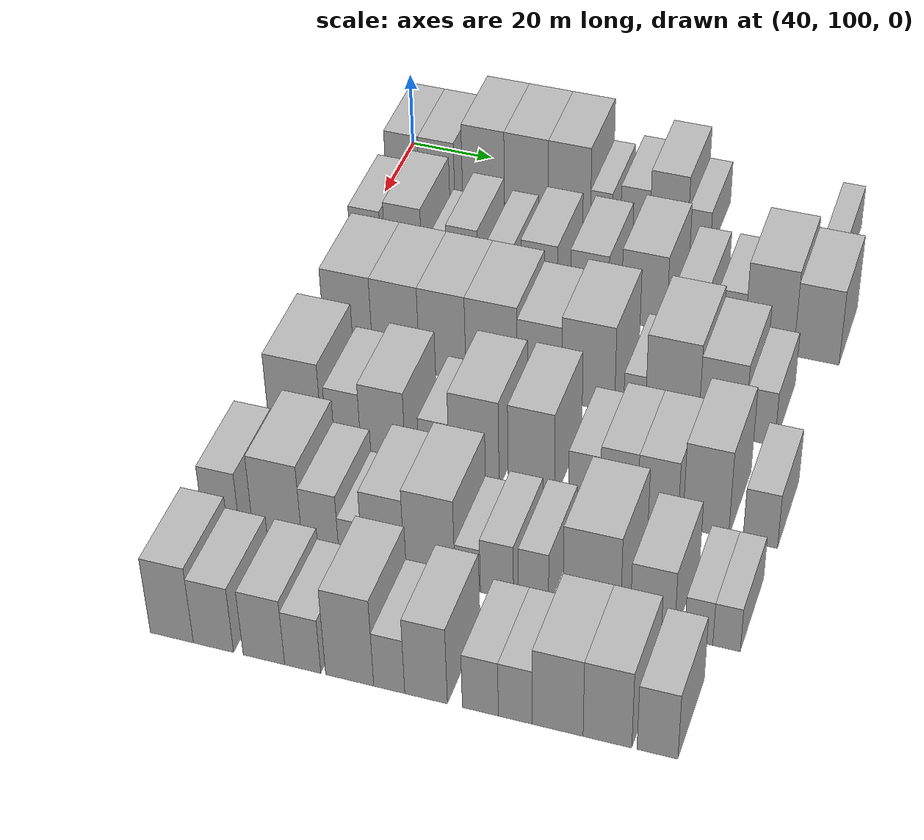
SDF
<sdf version="1.6">
 <world name="default">
  <model name="building_68">
   <static>1</static>
   <pose>50.0000 104.3968 0 0.000000 0.000000 0.000000</pose>
   <link name="link">
    <pose>0 0 9.00 0 0 0</pose>
    <collision name="collision"><geometry><box><size>20.0000 8.3330 18.0000</size></box></geometry></collision>
    <visual name="visual">
     <cast_shadows>0</cast_shadows>
     <geometry><box><size>20.0000 8.3330 18.0000</size></box></geometry>
     <material>
      <script>
       <uri>model://HANNAS_wall/materials/scripts</uri>
       <uri>model://HANNAS_wall/materials/textures</uri>
       <name>vrc/HANNAS_wall</name>
      </script>
     </material>
    </visual>
   </link>
  </model>
  <model name="building_69">
   <static>1</static>
   <pose>50.0000 112.9626 0 0.000000 0.000000 0.000000</pose>
   <link name="link">
    <pose>0 0 9.00 0 0 0</pose>
    <collision name="collision"><geometry><box><size>20.0000 8.7986 18.0000</size></box></geometry></collision>
    <visual name="visual">
     <cast_shadows>0</cast_shadows>
     <geometry><box><size>20.0000 8.7986 18.0000</size></box></geometry>
     <material>
      <script>
       <uri>model://HANNAS_wall/materials/scripts</uri>
       <uri>model://HANNAS_wall/materials/textures</uri>
       <name>vrc/HANNAS_wall</name>
      </script>
     </material>
    </visual>
   </link>
  </model>
  <model name="building_70">
   <static>1</static>
   <pose>50.0000 124.5488 0 0.000000 0.000000 0.000000</pose>
   <link name="link">
    <pose>0 0 12.00 0 0 0</pose>
    <collision name="collision"><geometry><box><size>20.0000 10.3739 24.0000</size></box></geometry></collision>
    <visual name="visual">
     <cast_shadows>0</cast_shadows>
     <geometry><box><size>20.0000 10.3739 24.0000</size></box></geometry>
     <material>
      <script>
       <uri>model://HANNAS_wall/materials/scripts</uri>
       <uri>model://HANNAS_wall/materials/textures</uri>
       <name>vrc/HANNAS_wall</name>
      </script>
     </material>
    </visual>
   </link>
  </model>
  <model name="building_71">
   <static>1</static>
   <pose>50.0000 135.1065 0 0.000000 0.000000 0.000000</pose>
   <link name="link">
    <pose>0 0 12.00 0 0 0</pose>
    <collision name="collision"><geometry><box><size>20.0000 10.7414 24.0000</size></box></geometry></collision>
    <visual name="visual">
     <cast_shadows>0</cast_shadows>
     <geometry><box><size>20.0000 10.7414 24.0000</size></box></geometry>
     <material>
      <script>
       <uri>model://HANNAS_wall/materials/scripts</uri>
       <uri>model://HANNAS_wall/materials/textures</uri>
       <name>vrc/HANNAS_wall</name>
      </script>
     </material>
    </visual>
   </link>
  </model>
  <model name="building_72">
   <static>1</static>
   <pose>50.0000 145.6075 0 0.000000 0.000000 0.000000</pose>
   <link name="link">
    <pose>0 0 12.00 0 0 0</pose>
    <collision name="collision"><geometry><box><size>20.0000 10.2606 24.0000</size></box></geometry></collision>
    <visual name="visual">
     <cast_shadows>0</cast_shadows>
     <geometry><box><size>20.0000 10.2606 24.0000</size></box></geometry>
     <material>
      <script>
       <uri>model://HANNAS_wall/materials/scripts</uri>
       <uri>model://HANNAS_wall/materials/textures</uri>
       <name>vrc/HANNAS_wall</name>
      </script>
     </material>
    </visual>
   </link>
  </model>
  <model name="building_73">
   <static>1</static>
   <pose>50.0000 153.3737 0 0.000000 0.000000 0.000000</pose>
   <link name="link">
    <pose>0 0 6.00 0 0 0</pose>
    <collision name="collision"><geometry><box><size>20.0000 5.2719 12.0000</size></box></geometry></collision>
    <visual name="visual">
     <cast_shadows>0</cast_shadows>
     <geometry><box><size>20.0000 5.2719 12.0000</size></box></geometry>
     <material>
      <script>
       <uri>model://HANNAS_wall/materials/scripts</uri>
       <uri>model://HANNAS_wall/materials/textures</uri>
       <name>vrc/HANNAS_wall</name>
      </script>
     </material>
    </visual>
   </link>
  </model>
  <model name="building_74">
   <static>1</static>
   <pose>50.0000 161.5263 0 0.000000 0.000000 0.000000</pose>
   <link name="link">
    <pose>0 0 7.50 0 0 0</pose>
    <collision name="collision"><geometry><box><size>20.0000 7.0333 15.0000</size></box></geometry></collision>
    <visual name="visual">
     <cast_shadows>0</cast_shadows>
     <geometry><box><size>20.0000 7.0333 15.0000</size></box></geometry>
     <material>
      <script>
       <uri>model://HANNAS_wall/materials/scripts</uri>
       <uri>model://HANNAS_wall/materials/textures</uri>
       <name>vrc/HANNAS_wall</name>
      </script>
     </material>
    </visual>
   </link>
  </model>
  <model name="building_75">
   <static>1</static>
   <pose>50.0000 169.5614 0 0.000000 0.000000 0.000000</pose>
   <link name="link">
    <pose>0 0 10.50 0 0 0</pose>
    <collision name="collision"><geometry><box><size>20.0000 9.0369 21.0000</size></box></geometry></collision>
    <visual name="visual">
     <cast_shadows>0</cast_shadows>
     <geometry><box><size>20.0000 9.0369 21.0000</size></box></geometry>
     <material>
      <script>
       <uri>model://HANNAS_wall/materials/scripts</uri>
       <uri>model://HANNAS_wall/materials/textures</uri>
       <name>vrc/HANNAS_wall</name>
      </script>
     </material>
    </visual>
   </link>
  </model>
  <model name="building_76">
   <static>1</static>
   <pose>50.0000 176.8203 0 0.000000 0.000000 0.000000</pose>
   <link name="link">
    <pose>0 0 6.00 0 0 0</pose>
    <collision name="collision"><geometry><box><size>20.0000 5.4810 12.0000</size></box></geometry></collision>
    <visual name="visual">
     <cast_shadows>0</cast_shadows>
     <geometry><box><size>20.0000 5.4810 12.0000</size></box></geometry>
     <material>
      <script>
       <uri>model://HANNAS_wall/materials/scripts</uri>
       <uri>model://HANNAS_wall/materials/textures</uri>
       <name>vrc/HANNAS_wall</name>
      </script>
     </material>
    </visual>
   </link>
  </model>
  <model name="building_77">
   <static>1</static>
   <pose>50.0000 208.4367 0 0.000000 0.000000 0.000000</pose>
   <link name="link">
    <pose>0 0 6.00 0 0 0</pose>
    <collision name="collision"><geometry><box><size>20.0000 5.2506 12.0000</size></box></geometry></collision>
    <visual name="visual">
     <cast_shadows>0</cast_shadows>
     <geometry><box><size>20.0000 5.2506 12.0000</size></box></geometry>
     <material>
      <script>
       <uri>model://HANNAS_wall/materials/scripts</uri>
       <uri>model://HANNAS_wall/materials/textures</uri>
       <name>vrc/HANNAS_wall</name>
      </script>
     </material>
    </visual>
   </link>
  </model>
  <model name="building_180">
   <static>1</static>
   <pose>79.0000 105.8262 0 0.000000 0.000000 0.000000</pose>
   <link name="link">
    <pose>0 0 9.00 0 0 0</pose>
    <collision name="collision"><geometry><box><size>20.0000 7.3974 18.0000</size></box></geometry></collision>
    <visual name="visual">
     <cast_shadows>0</cast_shadows>
     <geometry><box><size>20.0000 7.3974 18.0000</size></box></geometry>
     <material>
      <script>
       <uri>model://HANNAS_wall/materials/scripts</uri>
       <uri>model://HANNAS_wall/materials/textures</uri>
       <name>vrc/HANNAS_wall</name>
      </script>
     </material>
    </visual>
   </link>
  </model>
  <model name="building_181">
   <static>1</static>
   <pose>79.0000 114.9320 0 0.000000 0.000000 0.000000</pose>
   <link name="link">
    <pose>0 0 10.50 0 0 0</pose>
    <collision name="collision"><geometry><box><size>20.0000 8.8144 21.0000</size></box></geometry></collision>
    <visual name="visual">
     <cast_shadows>0</cast_shadows>
     <geometry><box><size>20.0000 8.8144 21.0000</size></box></geometry>
     <material>
      <script>
       <uri>model://HANNAS_wall/materials/scripts</uri>
       <uri>model://HANNAS_wall/materials/textures</uri>
       <name>vrc/HANNAS_wall</name>
      </script>
     </material>
    </visual>
   </link>
  </model>
  <model name="building_182">
   <static>1</static>
   <pose>79.0000 122.7946 0 0.000000 0.000000 0.000000</pose>
   <link name="link">
    <pose>0 0 6.00 0 0 0</pose>
    <collision name="collision"><geometry><box><size>20.0000 4.9108 12.0000</size></box></geometry></collision>
    <visual name="visual">
     <cast_shadows>0</cast_shadows>
     <geometry><box><size>20.0000 4.9108 12.0000</size></box></geometry>
     <material>
      <script>
       <uri>model://HANNAS_wall/materials/scripts</uri>
       <uri>model://HANNAS_wall/materials/textures</uri>
       <name>vrc/HANNAS_wall</name>
      </script>
     </material>
    </visual>
   </link>
  </model>
  <model name="building_183">
   <static>1</static>
   <pose>79.0000 128.9486 0 0.000000 0.000000 0.000000</pose>
   <link name="link">
    <pose>0 0 9.00 0 0 0</pose>
    <collision name="collision"><geometry><box><size>20.0000 7.3972 18.0000</size></box></geometry></collision>
    <visual name="visual">
     <cast_shadows>0</cast_shadows>
     <geometry><box><size>20.0000 7.3972 18.0000</size></box></geometry>
     <material>
      <script>
       <uri>model://HANNAS_wall/materials/scripts</uri>
       <uri>model://HANNAS_wall/materials/textures</uri>
       <name>vrc/HANNAS_wall</name>
      </script>
     </material>
    </visual>
   </link>
  </model>
  <model name="building_184">
   <static>1</static>
   <pose>79.0000 137.7627 0 0.000000 0.000000 0.000000</pose>
   <link name="link">
    <pose>0 0 7.50 0 0 0</pose>
    <collision name="collision"><geometry><box><size>20.0000 6.2309 15.0000</size></box></geometry></collision>
    <visual name="visual">
     <cast_shadows>0</cast_shadows>
     <geometry><box><size>20.0000 6.2309 15.0000</size></box></geometry>
     <material>
      <script>
       <uri>model://HANNAS_wall/materials/scripts</uri>
       <uri>model://HANNAS_wall/materials/textures</uri>
       <name>vrc/HANNAS_wall</name>
      </script>
     </material>
    </visual>
   </link>
  </model>
  <model name="building_185">
   <static>1</static>
   <pose>79.0000 147.1471 0 0.000000 0.000000 0.000000</pose>
   <link name="link">
    <pose>0 0 9.00 0 0 0</pose>
    <collision name="collision"><geometry><box><size>20.0000 8.5379 18.0000</size></box></geometry></collision>
    <visual name="visual">
     <cast_shadows>0</cast_shadows>
     <geometry><box><size>20.0000 8.5379 18.0000</size></box></geometry>
     <material>
      <script>
       <uri>model://HANNAS_wall/materials/scripts</uri>
       <uri>model://HANNAS_wall/materials/textures</uri>
       <name>vrc/HANNAS_wall</name>
      </script>
     </material>
    </visual>
   </link>
  </model>
  <model name="building_186">
   <static>1</static>
   <pose>79.0000 158.8501 0 0.000000 0.000000 0.000000</pose>
   <link name="link">
    <pose>0 0 9.00 0 0 0</pose>
    <collision name="collision"><geometry><box><size>20.0000 8.8682 18.0000</size></box></geometry></collision>
    <visual name="visual">
     <cast_shadows>0</cast_shadows>
     <geometry><box><size>20.0000 8.8682 18.0000</size></box></geometry>
     <material>
      <script>
       <uri>model://HANNAS_wall/materials/scripts</uri>
       <uri>model://HANNAS_wall/materials/textures</uri>
       <name>vrc/HANNAS_wall</name>
      </script>
     </material>
    </visual>
   </link>
  </model>
  <model name="building_187">
   <static>1</static>
   <pose>79.0000 171.5211 0 0.000000 0.000000 0.000000</pose>
   <link name="link">
    <pose>0 0 10.50 0 0 0</pose>
    <collision name="collision"><geometry><box><size>20.0000 10.4739 21.0000</size></box></geometry></collision>
    <visual name="visual">
     <cast_shadows>0</cast_shadows>
     <geometry><box><size>20.0000 10.4739 21.0000</size></box></geometry>
     <material>
      <script>
       <uri>model://HANNAS_wall/materials/scripts</uri>
       <uri>model://HANNAS_wall/materials/textures</uri>
       <name>vrc/HANNAS_wall</name>
      </script>
     </material>
    </visual>
   </link>
  </model>
  <model name="building_188">
   <static>1</static>
   <pose>79.0000 182.4467 0 0.000000 0.000000 0.000000</pose>
   <link name="link">
    <pose>0 0 7.50 0 0 0</pose>
    <collision name="collision"><geometry><box><size>20.0000 7.3772 15.0000</size></box></geometry></collision>
    <visual name="visual">
     <cast_shadows>0</cast_shadows>
     <geometry><box><size>20.0000 7.3772 15.0000</size></box></geometry>
     <material>
      <script>
       <uri>model://HANNAS_wall/materials/scripts</uri>
       <uri>model://HANNAS_wall/materials/textures</uri>
       <name>vrc/HANNAS_wall</name>
      </script>
     </material>
    </visual>
   </link>
  </model>
  <model name="building_189">
   <static>1</static>
   <pose>79.0000 191.3537 0 0.000000 0.000000 0.000000</pose>
   <link name="link">
    <pose>0 0 7.50 0 0 0</pose>
    <collision name="collision"><geometry><box><size>20.0000 6.4369 15.0000</size></box></geometry></collision>
    <visual name="visual">
     <cast_shadows>0</cast_shadows>
     <geometry><box><size>20.0000 6.4369 15.0000</size></box></geometry>
     <material>
      <script>
       <uri>model://HANNAS_wall/materials/scripts</uri>
       <uri>model://HANNAS_wall/materials/textures</uri>
       <name>vrc/HANNAS_wall</name>
      </script>
     </material>
    </visual>
   </link>
  </model>
  <model name="building_190">
   <static>1</static>
   <pose>79.0000 200.1548 0 0.000000 0.000000 0.000000</pose>
   <link name="link">
    <pose>0 0 12.00 0 0 0</pose>
    <collision name="collision"><geometry><box><size>20.0000 11.1652 24.0000</size></box></geometry></collision>
    <visual name="visual">
     <cast_shadows>0</cast_shadows>
     <geometry><box><size>20.0000 11.1652 24.0000</size></box></geometry>
     <material>
      <script>
       <uri>model://HANNAS_wall/materials/scripts</uri>
       <uri>model://HANNAS_wall/materials/textures</uri>
       <name>vrc/HANNAS_wall</name>
      </script>
     </material>
    </visual>
   </link>
  </model>
  <model name="building_191">
   <static>1</static>
   <pose>79.0000 210.8353 0 0.000000 0.000000 0.000000</pose>
   <link name="link">
    <pose>0 0 10.50 0 0 0</pose>
    <collision name="collision"><geometry><box><size>20.0000 10.1958 21.0000</size></box></geometry></collision>
    <visual name="visual">
     <cast_shadows>0</cast_shadows>
     <geometry><box><size>20.0000 10.1958 21.0000</size></box></geometry>
     <material>
      <script>
       <uri>model://HANNAS_wall/materials/scripts</uri>
       <uri>model://HANNAS_wall/materials/textures</uri>
       <name>vrc/HANNAS_wall</name>
      </script>
     </material>
    </visual>
   </link>
  </model>
  <model name="building_293">
   <static>1</static>
   <pose>108.0000 112.2654 0 0.000000 0.000000 0.000000</pose>
   <link name="link">
    <pose>0 0 12.00 0 0 0</pose>
    <collision name="collision"><geometry><box><size>20.0000 11.2115 24.0000</size></box></geometry></collision>
    <visual name="visual">
     <cast_shadows>0</cast_shadows>
     <geometry><box><size>20.0000 11.2115 24.0000</size></box></geometry>
     <material>
      <script>
       <uri>model://HANNAS_wall/materials/scripts</uri>
       <uri>model://HANNAS_wall/materials/textures</uri>
       <name>vrc/HANNAS_wall</name>
      </script>
     </material>
    </visual>
   </link>
  </model>
  <model name="building_294">
   <static>1</static>
   <pose>108.0000 123.2812 0 0.000000 0.000000 0.000000</pose>
   <link name="link">
    <pose>0 0 12.00 0 0 0</pose>
    <collision name="collision"><geometry><box><size>20.0000 10.8199 24.0000</size></box></geometry></collision>
    <visual name="visual">
     <cast_shadows>0</cast_shadows>
     <geometry><box><size>20.0000 10.8199 24.0000</size></box></geometry>
     <material>
      <script>
       <uri>model://HANNAS_wall/materials/scripts</uri>
       <uri>model://HANNAS_wall/materials/textures</uri>
       <name>vrc/HANNAS_wall</name>
      </script>
     </material>
    </visual>
   </link>
  </model>
  <model name="building_295">
   <static>1</static>
   <pose>108.0000 134.0326 0 0.000000 0.000000 0.000000</pose>
   <link name="link">
    <pose>0 0 12.00 0 0 0</pose>
    <collision name="collision"><geometry><box><size>20.0000 10.6829 24.0000</size></box></geometry></collision>
    <visual name="visual">
     <cast_shadows>0</cast_shadows>
     <geometry><box><size>20.0000 10.6829 24.0000</size></box></geometry>
     <material>
      <script>
       <uri>model://HANNAS_wall/materials/scripts</uri>
       <uri>model://HANNAS_wall/materials/textures</uri>
       <name>vrc/HANNAS_wall</name>
      </script>
     </material>
    </visual>
   </link>
  </model>
  <model name="building_296">
   <static>1</static>
   <pose>108.0000 145.2301 0 0.000000 0.000000 0.000000</pose>
   <link name="link">
    <pose>0 0 12.00 0 0 0</pose>
    <collision name="collision"><geometry><box><size>20.0000 11.7120 24.0000</size></box></geometry></collision>
    <visual name="visual">
     <cast_shadows>0</cast_shadows>
     <geometry><box><size>20.0000 11.7120 24.0000</size></box></geometry>
     <material>
      <script>
       <uri>model://HANNAS_wall/materials/scripts</uri>
       <uri>model://HANNAS_wall/materials/textures</uri>
       <name>vrc/HANNAS_wall</name>
      </script>
     </material>
    </visual>
   </link>
  </model>
  <model name="building_297">
   <static>1</static>
   <pose>108.0000 156.0618 0 0.000000 0.000000 0.000000</pose>
   <link name="link">
    <pose>0 0 10.50 0 0 0</pose>
    <collision name="collision"><geometry><box><size>20.0000 9.9513 21.0000</size></box></geometry></collision>
    <visual name="visual">
     <cast_shadows>0</cast_shadows>
     <geometry><box><size>20.0000 9.9513 21.0000</size></box></geometry>
     <material>
      <script>
       <uri>model://HANNAS_wall/materials/scripts</uri>
       <uri>model://HANNAS_wall/materials/textures</uri>
       <name>vrc/HANNAS_wall</name>
      </script>
     </material>
    </visual>
   </link>
  </model>
  <model name="building_298">
   <static>1</static>
   <pose>108.0000 166.9744 0 0.000000 0.000000 0.000000</pose>
   <link name="link">
    <pose>0 0 12.00 0 0 0</pose>
    <collision name="collision"><geometry><box><size>20.0000 11.8740 24.0000</size></box></geometry></collision>
    <visual name="visual">
     <cast_shadows>0</cast_shadows>
     <geometry><box><size>20.0000 11.8740 24.0000</size></box></geometry>
     <material>
      <script>
       <uri>model://HANNAS_wall/materials/scripts</uri>
       <uri>model://HANNAS_wall/materials/textures</uri>
       <name>vrc/HANNAS_wall</name>
      </script>
     </material>
    </visual>
   </link>
  </model>
  <model name="building_299">
   <static>1</static>
   <pose>108.0000 177.3193 0 0.000000 0.000000 0.000000</pose>
   <link name="link">
    <pose>0 0 6.00 0 0 0</pose>
    <collision name="collision"><geometry><box><size>20.0000 4.8158 12.0000</size></box></geometry></collision>
    <visual name="visual">
     <cast_shadows>0</cast_shadows>
     <geometry><box><size>20.0000 4.8158 12.0000</size></box></geometry>
     <material>
      <script>
       <uri>model://HANNAS_wall/materials/scripts</uri>
       <uri>model://HANNAS_wall/materials/textures</uri>
       <name>vrc/HANNAS_wall</name>
      </script>
     </material>
    </visual>
   </link>
  </model>
  <model name="building_300">
   <static>1</static>
   <pose>108.0000 185.6047 0 0.000000 0.000000 0.000000</pose>
   <link name="link">
    <pose>0 0 12.00 0 0 0</pose>
    <collision name="collision"><geometry><box><size>20.0000 11.7549 24.0000</size></box></geometry></collision>
    <visual name="visual">
     <cast_shadows>0</cast_shadows>
     <geometry><box><size>20.0000 11.7549 24.0000</size></box></geometry>
     <material>
      <script>
       <uri>model://HANNAS_wall/materials/scripts</uri>
       <uri>model://HANNAS_wall/materials/textures</uri>
       <name>vrc/HANNAS_wall</name>
      </script>
     </material>
    </visual>
   </link>
  </model>
  <model name="building_301">
   <static>1</static>
   <pose>108.0000 196.5326 0 0.000000 0.000000 0.000000</pose>
   <link name="link">
    <pose>0 0 10.50 0 0 0</pose>
    <collision name="collision"><geometry><box><size>20.0000 10.1008 21.0000</size></box></geometry></collision>
    <visual name="visual">
     <cast_shadows>0</cast_shadows>
     <geometry><box><size>20.0000 10.1008 21.0000</size></box></geometry>
     <material>
      <script>
       <uri>model://HANNAS_wall/materials/scripts</uri>
       <uri>model://HANNAS_wall/materials/textures</uri>
       <name>vrc/HANNAS_wall</name>
      </script>
     </material>
    </visual>
   </link>
  </model>
  <model name="building_302">
   <static>1</static>
   <pose>108.0000 204.8444 0 0.000000 0.000000 0.000000</pose>
   <link name="link">
    <pose>0 0 7.50 0 0 0</pose>
    <collision name="collision"><geometry><box><size>20.0000 6.5229 15.0000</size></box></geometry></collision>
    <visual name="visual">
     <cast_shadows>0</cast_shadows>
     <geometry><box><size>20.0000 6.5229 15.0000</size></box></geometry>
     <material>
      <script>
       <uri>model://HANNAS_wall/materials/scripts</uri>
       <uri>model://HANNAS_wall/materials/textures</uri>
       <name>vrc/HANNAS_wall</name>
      </script>
     </material>
    </visual>
   </link>
  </model>
  <model name="building_397">
   <static>1</static>
   <pose>137.0000 111.1829 0 0.000000 0.000000 0.000000</pose>
   <link name="link">
    <pose>0 0 12.00 0 0 0</pose>
    <collision name="collision"><geometry><box><size>20.0000 11.9411 24.0000</size></box></geometry></collision>
    <visual name="visual">
     <cast_shadows>0</cast_shadows>
     <geometry><box><size>20.0000 11.9411 24.0000</size></box></geometry>
     <material>
      <script>
       <uri>model://HANNAS_wall/materials/scripts</uri>
       <uri>model://HANNAS_wall/materials/textures</uri>
       <name>vrc/HANNAS_wall</name>
      </script>
     </material>
    </visual>
   </link>
  </model>
  <model name="building_398">
   <static>1</static>
   <pose>137.0000 121.9728 0 0.000000 0.000000 0.000000</pose>
   <link name="link">
    <pose>0 0 9.00 0 0 0</pose>
    <collision name="collision"><geometry><box><size>20.0000 7.6387 18.0000</size></box></geometry></collision>
    <visual name="visual">
     <cast_shadows>0</cast_shadows>
     <geometry><box><size>20.0000 7.6387 18.0000</size></box></geometry>
     <material>
      <script>
       <uri>model://HANNAS_wall/materials/scripts</uri>
       <uri>model://HANNAS_wall/materials/textures</uri>
       <name>vrc/HANNAS_wall</name>
      </script>
     </material>
    </visual>
   </link>
  </model>
  <model name="building_399">
   <static>1</static>
   <pose>137.0000 130.7459 0 0.000000 0.000000 0.000000</pose>
   <link name="link">
    <pose>0 0 10.50 0 0 0</pose>
    <collision name="collision"><geometry><box><size>20.0000 9.9074 21.0000</size></box></geometry></collision>
    <visual name="visual">
     <cast_shadows>0</cast_shadows>
     <geometry><box><size>20.0000 9.9074 21.0000</size></box></geometry>
     <material>
      <script>
       <uri>model://HANNAS_wall/materials/scripts</uri>
       <uri>model://HANNAS_wall/materials/textures</uri>
       <name>vrc/HANNAS_wall</name>
      </script>
     </material>
    </visual>
   </link>
  </model>
  <model name="building_400">
   <static>1</static>
   <pose>137.0000 142.0355 0 0.000000 0.000000 0.000000</pose>
   <link name="link">
    <pose>0 0 7.50 0 0 0</pose>
    <collision name="collision"><geometry><box><size>20.0000 6.6718 15.0000</size></box></geometry></collision>
    <visual name="visual">
     <cast_shadows>0</cast_shadows>
     <geometry><box><size>20.0000 6.6718 15.0000</size></box></geometry>
     <material>
      <script>
       <uri>model://HANNAS_wall/materials/scripts</uri>
       <uri>model://HANNAS_wall/materials/textures</uri>
       <name>vrc/HANNAS_wall</name>
      </script>
     </material>
    </visual>
   </link>
  </model>
  <model name="building_401">
   <static>1</static>
   <pose>137.0000 150.7926 0 0.000000 0.000000 0.000000</pose>
   <link name="link">
    <pose>0 0 12.00 0 0 0</pose>
    <collision name="collision"><geometry><box><size>20.0000 10.8425 24.0000</size></box></geometry></collision>
    <visual name="visual">
     <cast_shadows>0</cast_shadows>
     <geometry><box><size>20.0000 10.8425 24.0000</size></box></geometry>
     <material>
      <script>
       <uri>model://HANNAS_wall/materials/scripts</uri>
       <uri>model://HANNAS_wall/materials/textures</uri>
       <name>vrc/HANNAS_wall</name>
      </script>
     </material>
    </visual>
   </link>
  </model>
  <model name="building_402">
   <static>1</static>
   <pose>137.0000 163.2193 0 0.000000 0.000000 0.000000</pose>
   <link name="link">
    <pose>0 0 12.00 0 0 0</pose>
    <collision name="collision"><geometry><box><size>20.0000 10.0109 24.0000</size></box></geometry></collision>
    <visual name="visual">
     <cast_shadows>0</cast_shadows>
     <geometry><box><size>20.0000 10.0109 24.0000</size></box></geometry>
     <material>
      <script>
       <uri>model://HANNAS_wall/materials/scripts</uri>
       <uri>model://HANNAS_wall/materials/textures</uri>
       <name>vrc/HANNAS_wall</name>
      </script>
     </material>
    </visual>
   </link>
  </model>
  <model name="building_403">
   <static>1</static>
   <pose>137.0000 174.6057 0 0.000000 0.000000 0.000000</pose>
   <link name="link">
    <pose>0 0 7.50 0 0 0</pose>
    <collision name="collision"><geometry><box><size>20.0000 6.7619 15.0000</size></box></geometry></collision>
    <visual name="visual">
     <cast_shadows>0</cast_shadows>
     <geometry><box><size>20.0000 6.7619 15.0000</size></box></geometry>
     <material>
      <script>
       <uri>model://HANNAS_wall/materials/scripts</uri>
       <uri>model://HANNAS_wall/materials/textures</uri>
       <name>vrc/HANNAS_wall</name>
      </script>
     </material>
    </visual>
   </link>
  </model>
  <model name="building_404">
   <static>1</static>
   <pose>137.0000 181.9669 0 0.000000 0.000000 0.000000</pose>
   <link name="link">
    <pose>0 0 9.00 0 0 0</pose>
    <collision name="collision"><geometry><box><size>20.0000 7.9606 18.0000</size></box></geometry></collision>
    <visual name="visual">
     <cast_shadows>0</cast_shadows>
     <geometry><box><size>20.0000 7.9606 18.0000</size></box></geometry>
     <material>
      <script>
       <uri>model://HANNAS_wall/materials/scripts</uri>
       <uri>model://HANNAS_wall/materials/textures</uri>
       <name>vrc/HANNAS_wall</name>
      </script>
     </material>
    </visual>
   </link>
  </model>
  <model name="building_405">
   <static>1</static>
   <pose>137.0000 190.2217 0 0.000000 0.000000 0.000000</pose>
   <link name="link">
    <pose>0 0 9.00 0 0 0</pose>
    <collision name="collision"><geometry><box><size>20.0000 8.5491 18.0000</size></box></geometry></collision>
    <visual name="visual">
     <cast_shadows>0</cast_shadows>
     <geometry><box><size>20.0000 8.5491 18.0000</size></box></geometry>
     <material>
      <script>
       <uri>model://HANNAS_wall/materials/scripts</uri>
       <uri>model://HANNAS_wall/materials/textures</uri>
       <name>vrc/HANNAS_wall</name>
      </script>
     </material>
    </visual>
   </link>
  </model>
  <model name="building_406">
   <static>1</static>
   <pose>137.0000 200.3164 0 0.000000 0.000000 0.000000</pose>
   <link name="link">
    <pose>0 0 12.00 0 0 0</pose>
    <collision name="collision"><geometry><box><size>20.0000 9.6403 24.0000</size></box></geometry></collision>
    <visual name="visual">
     <cast_shadows>0</cast_shadows>
     <geometry><box><size>20.0000 9.6403 24.0000</size></box></geometry>
     <material>
      <script>
       <uri>model://HANNAS_wall/materials/scripts</uri>
       <uri>model://HANNAS_wall/materials/textures</uri>
       <name>vrc/HANNAS_wall</name>
      </script>
     </material>
    </visual>
   </link>
  </model>
  <model name="building_407">
   <static>1</static>
   <pose>137.0000 211.7316 0 0.000000 0.000000 0.000000</pose>
   <link name="link">
    <pose>0 0 7.50 0 0 0</pose>
    <collision name="collision"><geometry><box><size>20.0000 7.1901 15.0000</size></box></geometry></collision>
    <visual name="visual">
     <cast_shadows>0</cast_shadows>
     <geometry><box><size>20.0000 7.1901 15.0000</size></box></geometry>
     <material>
      <script>
       <uri>model://HANNAS_wall/materials/scripts</uri>
       <uri>model://HANNAS_wall/materials/textures</uri>
       <name>vrc/HANNAS_wall</name>
      </script>
     </material>
    </visual>
   </link>
  </model>
  <model name="building_512">
   <static>1</static>
   <pose>166.0000 106.2360 0 0.000000 0.000000 0.000000</pose>
   <link name="link">
    <pose>0 0 9.00 0 0 0</pose>
    <collision name="collision"><geometry><box><size>20.0000 8.0060 18.0000</size></box></geometry></collision>
    <visual name="visual">
     <cast_shadows>0</cast_shadows>
     <geometry><box><size>20.0000 8.0060 18.0000</size></box></geometry>
     <material>
      <script>
       <uri>model://HANNAS_wall/materials/scripts</uri>
       <uri>model://HANNAS_wall/materials/textures</uri>
       <name>vrc/HANNAS_wall</name>
      </script>
     </material>
    </visual>
   </link>
  </model>
  <model name="building_513">
   <static>1</static>
   <pose>166.0000 118.5376 0 0.000000 0.000000 0.000000</pose>
   <link name="link">
    <pose>0 0 12.00 0 0 0</pose>
    <collision name="collision"><geometry><box><size>20.0000 10.5971 24.0000</size></box></geometry></collision>
    <visual name="visual">
     <cast_shadows>0</cast_shadows>
     <geometry><box><size>20.0000 10.5971 24.0000</size></box></geometry>
     <material>
      <script>
       <uri>model://HANNAS_wall/materials/scripts</uri>
       <uri>model://HANNAS_wall/materials/textures</uri>
       <name>vrc/HANNAS_wall</name>
      </script>
     </material>
    </visual>
   </link>
  </model>
  <model name="building_514">
   <static>1</static>
   <pose>166.0000 127.7714 0 0.000000 0.000000 0.000000</pose>
   <link name="link">
    <pose>0 0 9.00 0 0 0</pose>
    <collision name="collision"><geometry><box><size>20.0000 7.8706 18.0000</size></box></geometry></collision>
    <visual name="visual">
     <cast_shadows>0</cast_shadows>
     <geometry><box><size>20.0000 7.8706 18.0000</size></box></geometry>
     <material>
      <script>
       <uri>model://HANNAS_wall/materials/scripts</uri>
       <uri>model://HANNAS_wall/materials/textures</uri>
       <name>vrc/HANNAS_wall</name>
      </script>
     </material>
    </visual>
   </link>
  </model>
  <model name="building_515">
   <static>1</static>
   <pose>166.0000 134.2098 0 0.000000 0.000000 0.000000</pose>
   <link name="link">
    <pose>0 0 6.00 0 0 0</pose>
    <collision name="collision"><geometry><box><size>20.0000 5.0063 12.0000</size></box></geometry></collision>
    <visual name="visual">
     <cast_shadows>0</cast_shadows>
     <geometry><box><size>20.0000 5.0063 12.0000</size></box></geometry>
     <material>
      <script>
       <uri>model://HANNAS_wall/materials/scripts</uri>
       <uri>model://HANNAS_wall/materials/textures</uri>
       <name>vrc/HANNAS_wall</name>
      </script>
     </material>
    </visual>
   </link>
  </model>
  <model name="building_516">
   <static>1</static>
   <pose>166.0000 141.1816 0 0.000000 0.000000 0.000000</pose>
   <link name="link">
    <pose>0 0 10.50 0 0 0</pose>
    <collision name="collision"><geometry><box><size>20.0000 8.9372 21.0000</size></box></geometry></collision>
    <visual name="visual">
     <cast_shadows>0</cast_shadows>
     <geometry><box><size>20.0000 8.9372 21.0000</size></box></geometry>
     <material>
      <script>
       <uri>model://HANNAS_wall/materials/scripts</uri>
       <uri>model://HANNAS_wall/materials/textures</uri>
       <name>vrc/HANNAS_wall</name>
      </script>
     </material>
    </visual>
   </link>
  </model>
  <model name="building_517">
   <static>1</static>
   <pose>166.0000 150.9798 0 0.000000 0.000000 0.000000</pose>
   <link name="link">
    <pose>0 0 12.00 0 0 0</pose>
    <collision name="collision"><geometry><box><size>20.0000 10.6593 24.0000</size></box></geometry></collision>
    <visual name="visual">
     <cast_shadows>0</cast_shadows>
     <geometry><box><size>20.0000 10.6593 24.0000</size></box></geometry>
     <material>
      <script>
       <uri>model://HANNAS_wall/materials/scripts</uri>
       <uri>model://HANNAS_wall/materials/textures</uri>
       <name>vrc/HANNAS_wall</name>
      </script>
     </material>
    </visual>
   </link>
  </model>
  <model name="building_518">
   <static>1</static>
   <pose>166.0000 158.9435 0 0.000000 0.000000 0.000000</pose>
   <link name="link">
    <pose>0 0 6.00 0 0 0</pose>
    <collision name="collision"><geometry><box><size>20.0000 5.2681 12.0000</size></box></geometry></collision>
    <visual name="visual">
     <cast_shadows>0</cast_shadows>
     <geometry><box><size>20.0000 5.2681 12.0000</size></box></geometry>
     <material>
      <script>
       <uri>model://HANNAS_wall/materials/scripts</uri>
       <uri>model://HANNAS_wall/materials/textures</uri>
       <name>vrc/HANNAS_wall</name>
      </script>
     </material>
    </visual>
   </link>
  </model>
  <model name="building_519">
   <static>1</static>
   <pose>166.0000 165.0257 0 0.000000 0.000000 0.000000</pose>
   <link name="link">
    <pose>0 0 7.50 0 0 0</pose>
    <collision name="collision"><geometry><box><size>20.0000 6.8962 15.0000</size></box></geometry></collision>
    <visual name="visual">
     <cast_shadows>0</cast_shadows>
     <geometry><box><size>20.0000 6.8962 15.0000</size></box></geometry>
     <material>
      <script>
       <uri>model://HANNAS_wall/materials/scripts</uri>
       <uri>model://HANNAS_wall/materials/textures</uri>
       <name>vrc/HANNAS_wall</name>
      </script>
     </material>
    </visual>
   </link>
  </model>
  <model name="building_520">
   <static>1</static>
   <pose>166.0000 172.5883 0 0.000000 0.000000 0.000000</pose>
   <link name="link">
    <pose>0 0 7.50 0 0 0</pose>
    <collision name="collision"><geometry><box><size>20.0000 6.2289 15.0000</size></box></geometry></collision>
    <visual name="visual">
     <cast_shadows>0</cast_shadows>
     <geometry><box><size>20.0000 6.2289 15.0000</size></box></geometry>
     <material>
      <script>
       <uri>model://HANNAS_wall/materials/scripts</uri>
       <uri>model://HANNAS_wall/materials/textures</uri>
       <name>vrc/HANNAS_wall</name>
      </script>
     </material>
    </visual>
   </link>
  </model>
  <model name="building_521">
   <static>1</static>
   <pose>166.0000 184.5467 0 0.000000 0.000000 0.000000</pose>
   <link name="link">
    <pose>0 0 12.00 0 0 0</pose>
    <collision name="collision"><geometry><box><size>20.0000 11.6881 24.0000</size></box></geometry></collision>
    <visual name="visual">
     <cast_shadows>0</cast_shadows>
     <geometry><box><size>20.0000 11.6881 24.0000</size></box></geometry>
     <material>
      <script>
       <uri>model://HANNAS_wall/materials/scripts</uri>
       <uri>model://HANNAS_wall/materials/textures</uri>
       <name>vrc/HANNAS_wall</name>
      </script>
     </material>
    </visual>
   </link>
  </model>
  <model name="building_522">
   <static>1</static>
   <pose>166.0000 196.8771 0 0.000000 0.000000 0.000000</pose>
   <link name="link">
    <pose>0 0 9.00 0 0 0</pose>
    <collision name="collision"><geometry><box><size>20.0000 8.9727 18.0000</size></box></geometry></collision>
    <visual name="visual">
     <cast_shadows>0</cast_shadows>
     <geometry><box><size>20.0000 8.9727 18.0000</size></box></geometry>
     <material>
      <script>
       <uri>model://HANNAS_wall/materials/scripts</uri>
       <uri>model://HANNAS_wall/materials/textures</uri>
       <name>vrc/HANNAS_wall</name>
      </script>
     </material>
    </visual>
   </link>
  </model>
  <model name="building_523">
   <static>1</static>
   <pose>166.0000 206.2152 0 0.000000 0.000000 0.000000</pose>
   <link name="link">
    <pose>0 0 6.00 0 0 0</pose>
    <collision name="collision"><geometry><box><size>20.0000 5.7034 12.0000</size></box></geometry></collision>
    <visual name="visual">
     <cast_shadows>0</cast_shadows>
     <geometry><box><size>20.0000 5.7034 12.0000</size></box></geometry>
     <material>
      <script>
       <uri>model://HANNAS_wall/materials/scripts</uri>
       <uri>model://HANNAS_wall/materials/textures</uri>
       <name>vrc/HANNAS_wall</name>
      </script>
     </material>
    </visual>
   </link>
  </model>
  <model name="building_524">
   <static>1</static>
   <pose>166.0000 211.8118 0 0.000000 0.000000 0.000000</pose>
   <link name="link">
    <pose>0 0 6.00 0 0 0</pose>
    <collision name="collision"><geometry><box><size>20.0000 5.4900 12.0000</size></box></geometry></collision>
    <visual name="visual">
     <cast_shadows>0</cast_shadows>
     <geometry><box><size>20.0000 5.4900 12.0000</size></box></geometry>
     <material>
      <script>
       <uri>model://HANNAS_wall/materials/scripts</uri>
       <uri>model://HANNAS_wall/materials/textures</uri>
       <name>vrc/HANNAS_wall</name>
      </script>
     </material>
    </visual>
   </link>
  </model>
  <model name="building_634">
   <static>1</static>
   <pose>195.0000 107.7500 0 0.000000 0.000000 0.000000</pose>
   <link name="link">
    <pose>0 0 10.50 0 0 0</pose>
    <collision name="collision"><geometry><box><size>20.0000 9.0793 21.0000</size></box></geometry></collision>
    <visual name="visual">
     <cast_shadows>0</cast_shadows>
     <geometry><box><size>20.0000 9.0793 21.0000</size></box></geometry>
     <material>
      <script>
       <uri>model://HANNAS_wall/materials/scripts</uri>
       <uri>model://HANNAS_wall/materials/textures</uri>
       <name>vrc/HANNAS_wall</name>
      </script>
     </material>
    </visual>
   </link>
  </model>
  <model name="building_635">
   <static>1</static>
   <pose>195.0000 116.4989 0 0.000000 0.000000 0.000000</pose>
   <link name="link">
    <pose>0 0 9.00 0 0 0</pose>
    <collision name="collision"><geometry><box><size>20.0000 8.4183 18.0000</size></box></geometry></collision>
    <visual name="visual">
     <cast_shadows>0</cast_shadows>
     <geometry><box><size>20.0000 8.4183 18.0000</size></box></geometry>
     <material>
      <script>
       <uri>model://HANNAS_wall/materials/scripts</uri>
       <uri>model://HANNAS_wall/materials/textures</uri>
       <name>vrc/HANNAS_wall</name>
      </script>
     </material>
    </visual>
   </link>
  </model>
  <model name="building_636">
   <static>1</static>
   <pose>195.0000 127.0114 0 0.000000 0.000000 0.000000</pose>
   <link name="link">
    <pose>0 0 9.00 0 0 0</pose>
    <collision name="collision"><geometry><box><size>20.0000 8.6067 18.0000</size></box></geometry></collision>
    <visual name="visual">
     <cast_shadows>0</cast_shadows>
     <geometry><box><size>20.0000 8.6067 18.0000</size></box></geometry>
     <material>
      <script>
       <uri>model://HANNAS_wall/materials/scripts</uri>
       <uri>model://HANNAS_wall/materials/textures</uri>
       <name>vrc/HANNAS_wall</name>
      </script>
     </material>
    </visual>
   </link>
  </model>
  <model name="building_637">
   <static>1</static>
   <pose>195.0000 135.0380 0 0.000000 0.000000 0.000000</pose>
   <link name="link">
    <pose>0 0 7.50 0 0 0</pose>
    <collision name="collision"><geometry><box><size>20.0000 7.4465 15.0000</size></box></geometry></collision>
    <visual name="visual">
     <cast_shadows>0</cast_shadows>
     <geometry><box><size>20.0000 7.4465 15.0000</size></box></geometry>
     <material>
      <script>
       <uri>model://HANNAS_wall/materials/scripts</uri>
       <uri>model://HANNAS_wall/materials/textures</uri>
       <name>vrc/HANNAS_wall</name>
      </script>
     </material>
    </visual>
   </link>
  </model>
  <model name="building_638">
   <static>1</static>
   <pose>195.0000 144.6724 0 0.000000 0.000000 0.000000</pose>
   <link name="link">
    <pose>0 0 12.00 0 0 0</pose>
    <collision name="collision"><geometry><box><size>20.0000 9.8224 24.0000</size></box></geometry></collision>
    <visual name="visual">
     <cast_shadows>0</cast_shadows>
     <geometry><box><size>20.0000 9.8224 24.0000</size></box></geometry>
     <material>
      <script>
       <uri>model://HANNAS_wall/materials/scripts</uri>
       <uri>model://HANNAS_wall/materials/textures</uri>
       <name>vrc/HANNAS_wall</name>
      </script>
     </material>
    </visual>
   </link>
  </model>
  <model name="building_639">
   <static>1</static>
   <pose>195.0000 152.7251 0 0.000000 0.000000 0.000000</pose>
   <link name="link">
    <pose>0 0 7.50 0 0 0</pose>
    <collision name="collision"><geometry><box><size>20.0000 6.2831 15.0000</size></box></geometry></collision>
    <visual name="visual">
     <cast_shadows>0</cast_shadows>
     <geometry><box><size>20.0000 6.2831 15.0000</size></box></geometry>
     <material>
      <script>
       <uri>model://HANNAS_wall/materials/scripts</uri>
       <uri>model://HANNAS_wall/materials/textures</uri>
       <name>vrc/HANNAS_wall</name>
      </script>
     </material>
    </visual>
   </link>
  </model>
  <model name="building_640">
   <static>1</static>
   <pose>195.0000 160.1545 0 0.000000 0.000000 0.000000</pose>
   <link name="link">
    <pose>0 0 10.50 0 0 0</pose>
    <collision name="collision"><geometry><box><size>20.0000 8.5757 21.0000</size></box></geometry></collision>
    <visual name="visual">
     <cast_shadows>0</cast_shadows>
     <geometry><box><size>20.0000 8.5757 21.0000</size></box></geometry>
     <material>
      <script>
       <uri>model://HANNAS_wall/materials/scripts</uri>
       <uri>model://HANNAS_wall/materials/textures</uri>
       <name>vrc/HANNAS_wall</name>
      </script>
     </material>
    </visual>
   </link>
  </model>
  <model name="building_641">
   <static>1</static>
   <pose>195.0000 171.0201 0 0.000000 0.000000 0.000000</pose>
   <link name="link">
    <pose>0 0 7.50 0 0 0</pose>
    <collision name="collision"><geometry><box><size>20.0000 7.1555 15.0000</size></box></geometry></collision>
    <visual name="visual">
     <cast_shadows>0</cast_shadows>
     <geometry><box><size>20.0000 7.1555 15.0000</size></box></geometry>
     <material>
      <script>
       <uri>model://HANNAS_wall/materials/scripts</uri>
       <uri>model://HANNAS_wall/materials/textures</uri>
       <name>vrc/HANNAS_wall</name>
      </script>
     </material>
    </visual>
   </link>
  </model>
  <model name="building_642">
   <static>1</static>
   <pose>195.0000 177.9446 0 0.000000 0.000000 0.000000</pose>
   <link name="link">
    <pose>0 0 7.50 0 0 0</pose>
    <collision name="collision"><geometry><box><size>20.0000 6.6933 15.0000</size></box></geometry></collision>
    <visual name="visual">
     <cast_shadows>0</cast_shadows>
     <geometry><box><size>20.0000 6.6933 15.0000</size></box></geometry>
     <material>
      <script>
       <uri>model://HANNAS_wall/materials/scripts</uri>
       <uri>model://HANNAS_wall/materials/textures</uri>
       <name>vrc/HANNAS_wall</name>
      </script>
     </material>
    </visual>
   </link>
  </model>
  <model name="building_643">
   <static>1</static>
   <pose>195.0000 186.2804 0 0.000000 0.000000 0.000000</pose>
   <link name="link">
    <pose>0 0 10.50 0 0 0</pose>
    <collision name="collision"><geometry><box><size>20.0000 9.9783 21.0000</size></box></geometry></collision>
    <visual name="visual">
     <cast_shadows>0</cast_shadows>
     <geometry><box><size>20.0000 9.9783 21.0000</size></box></geometry>
     <material>
      <script>
       <uri>model://HANNAS_wall/materials/scripts</uri>
       <uri>model://HANNAS_wall/materials/textures</uri>
       <name>vrc/HANNAS_wall</name>
      </script>
     </material>
    </visual>
   </link>
  </model>
  <model name="building_644">
   <static>1</static>
   <pose>195.0000 196.0055 0 0.000000 0.000000 0.000000</pose>
   <link name="link">
    <pose>0 0 10.50 0 0 0</pose>
    <collision name="collision"><geometry><box><size>20.0000 9.4718 21.0000</size></box></geometry></collision>
    <visual name="visual">
     <cast_shadows>0</cast_shadows>
     <geometry><box><size>20.0000 9.4718 21.0000</size></box></geometry>
     <material>
      <script>
       <uri>model://HANNAS_wall/materials/scripts</uri>
       <uri>model://HANNAS_wall/materials/textures</uri>
       <name>vrc/HANNAS_wall</name>
      </script>
     </material>
    </visual>
   </link>
  </model>
  <model name="building_645">
   <static>1</static>
   <pose>195.0000 205.6847 0 0.000000 0.000000 0.000000</pose>
   <link name="link">
    <pose>0 0 9.00 0 0 0</pose>
    <collision name="collision"><geometry><box><size>20.0000 7.8868 18.0000</size></box></geometry></collision>
    <visual name="visual">
     <cast_shadows>0</cast_shadows>
     <geometry><box><size>20.0000 7.8868 18.0000</size></box></geometry>
     <material>
      <script>
       <uri>model://HANNAS_wall/materials/scripts</uri>
       <uri>model://HANNAS_wall/materials/textures</uri>
       <name>vrc/HANNAS_wall</name>
      </script>
     </material>
    </visual>
   </link>
  </model>
 </world>
</sdf>
